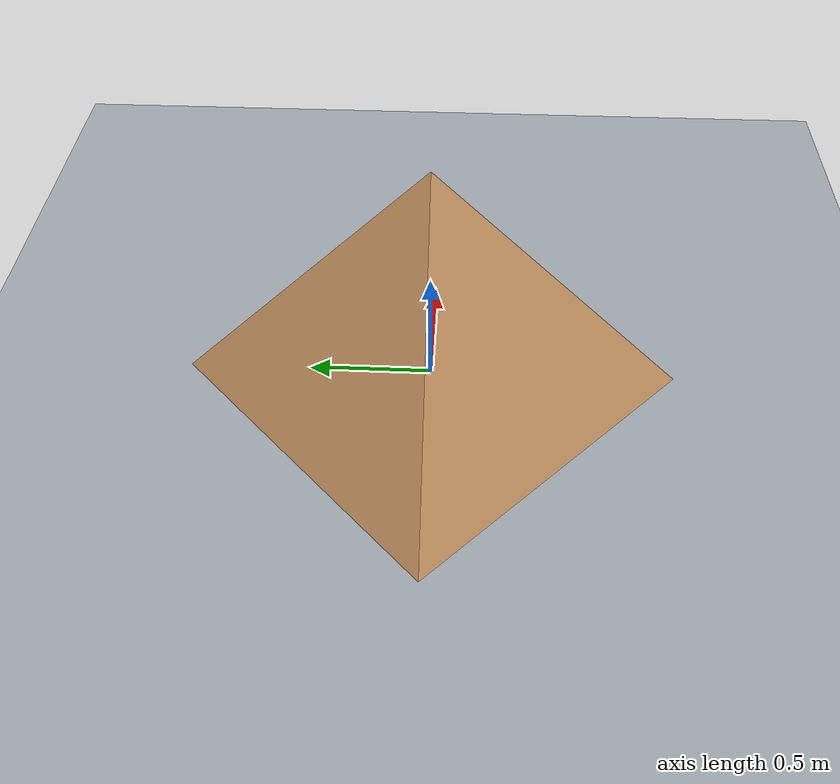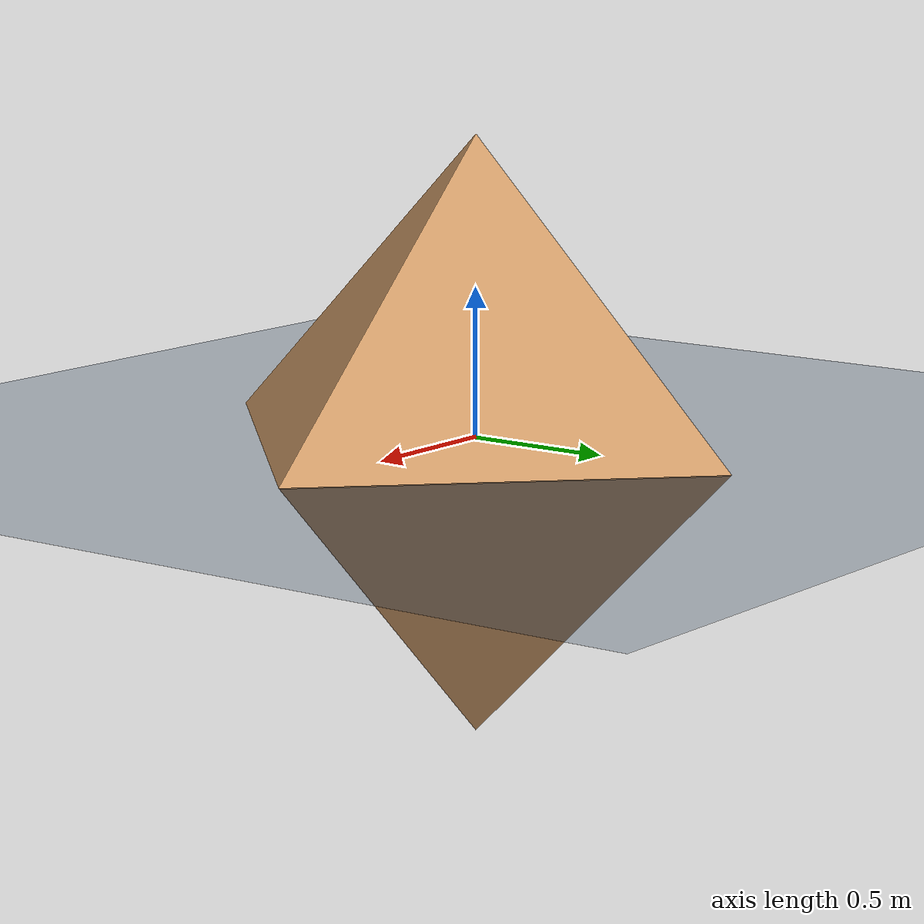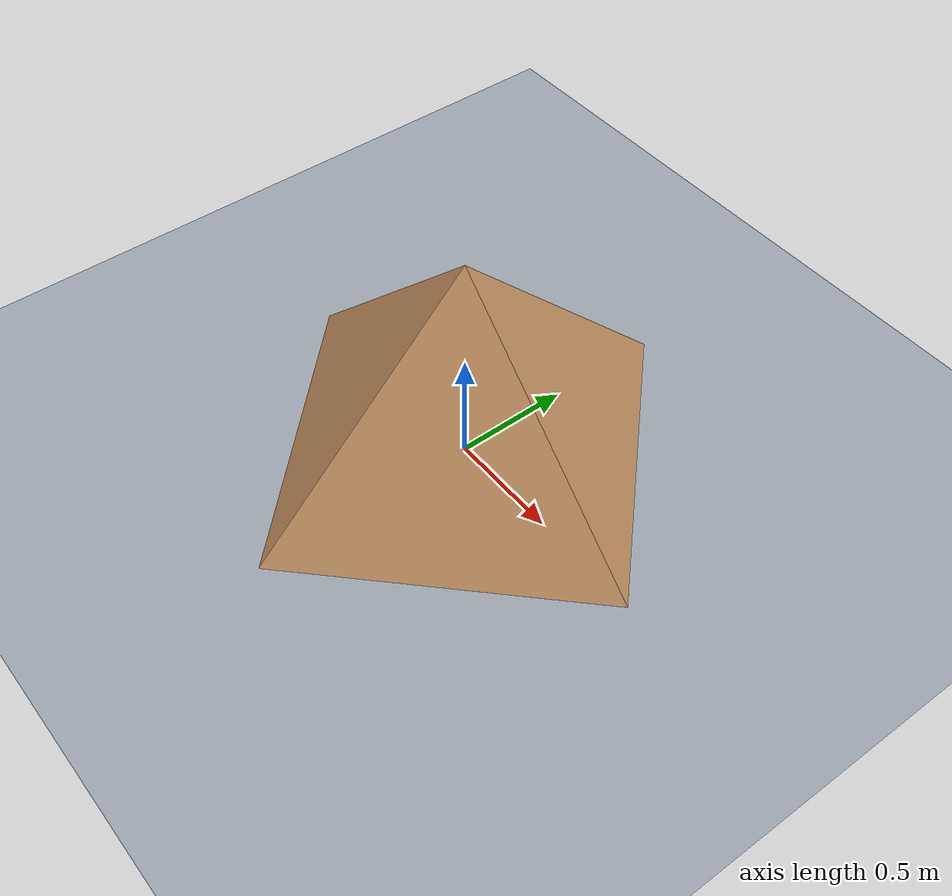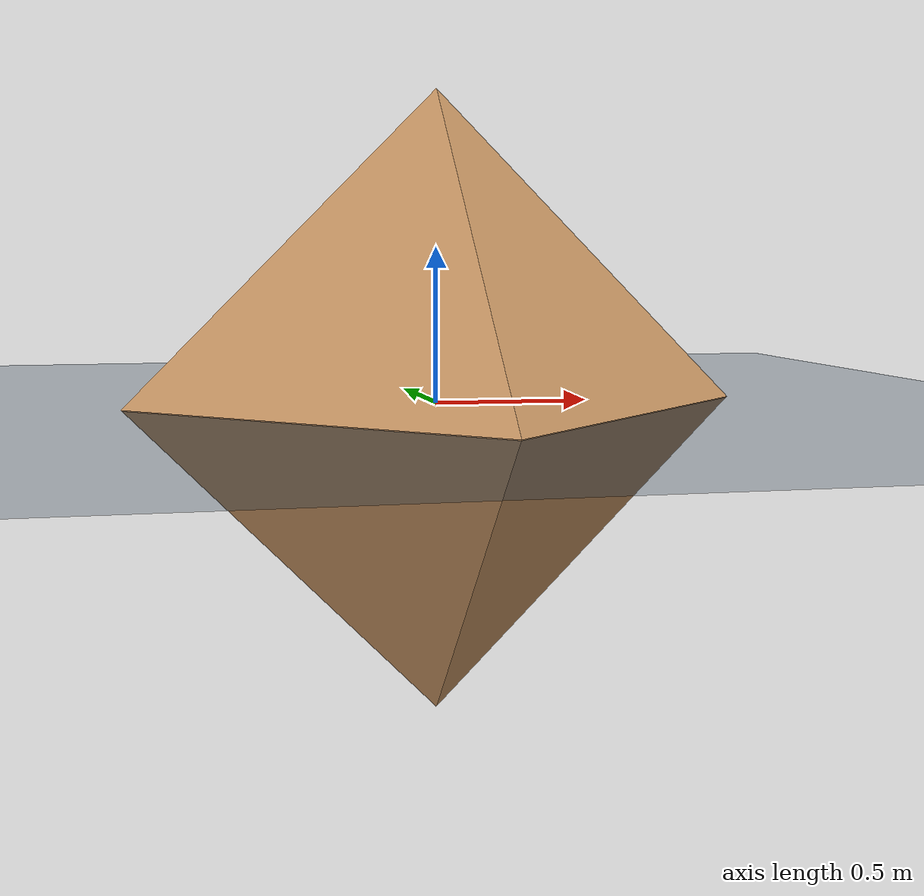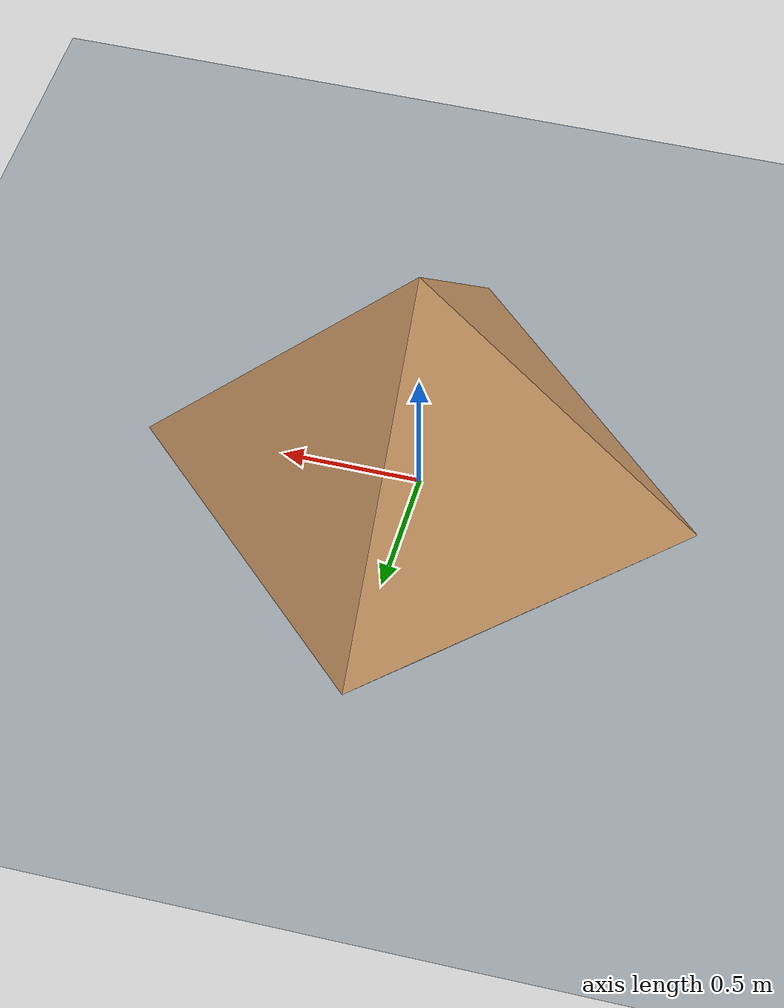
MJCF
<mujoco model="initial_humanoid">
  <!-- SET GRAVITY TO POINT DOWN -->
  <option gravity="0 0 -9.81">
    <!-- FLAG TO ADD NOISE TO SENSORS -->
    <flag sensornoise="disable"/>
  </option>

  <!-- VISUAL SETUP STUFF THAT I DON'T FULLY UNDERSTAND YET -->
  <visual>
    <map zfar="30"/>
    <rgba haze="0.15 0.25 0.35 1" />
  </visual>

  <!-- DON'T KNOW WHAT THIS DOES YET -->
  <statistic center="0 0 0.7"/>

  <!-- NOT SURE EXACTLY WHAT THIS STUFF DOES, BUT IT SETS UP THE CAMERA AND FLOOR -->
  <asset>
  <!-- this makes the sky blue in the simulation: -->
    <texture type="skybox" builtin="gradient" rgb1=".3 .5 .7" rgb2="0 0 0" width="32" height="512"/>

    <!-- configure the texture and material of the default body created in a simulation -->
    <texture name="body" type="cube" builtin="flat" mark="cross" width="128" height="128" rgb1="0.8 0.6 0.4" rgb2="0.8 0.6 0.4" markrgb="1 1 1" random="0.01"/>
    <!-- the material references the texture -->
    <material name="body" texture="body" texuniform="true" rgba="0.8 0.6 .4 1"/>

     <!-- configure the default texture and material for the ground of the simulation -->
    <texture name="grid" type="2d" builtin="checker" width="512" height="512" rgb1=".1 .2 .3" rgb2=".2 .3 .4"/>
    <!-- the material references the texture -->
    <material name="grid" texture="grid" texrepeat="1 1" texuniform="true" reflectance=".2"/>

    <mesh name="foot_mesh" vertex="-1 0 0  1 0 0  0 -1 0  0 1 0  0 0 1  0 0 -1"/>

  </asset>

  <!-- SECTION TO DEFINE GEOMETRIES AND JOINTS -->
  <default>

    <default class="general_geom">
      <motor ctrlrange="-0.5 0.5" ctrllimited="true"/>
      <!-- geoms -->
      <!-- ALL DEFAULT GEOMETRIES ARE CAPSULE TYPE -->
      <geom material="body" type="capsule" condim="1" friction="0.99 0.99 0.99" solimp=".9 .99 .003" group="1"/>

      <!-- SHIN GEOMETRY -->
      <default class="long_link">
        <geom fromto="0 0 0.1 0 0 0" size = "0.025"/>
      </default>

    </default>
  </default>

    <!-- DEFINE THE LEG, STARTING FROM THE WORLDBODY FRAME? -->
	<worldbody>
      <!-- DEFINE THE FLOOR IN THE ENVIRONMENT -->
      <geom name="ground" size="0 0 .05" friction='0.99 0.99 0.99' type="plane" material="grid" condim="3" solimp=".9 .99 .003" />

      <!-- LIGHT SETTING -->
      <light name="spotlight" mode="targetbodycom" target="foot" diffuse=".8 .8 .8" specular="0.3 0.3 0.3" pos="0 -6 4" cutoff="30"/>

        <!-- BODY FOR FOOT; CAN HAVE MAX 6-DOF -->
        <body name="foot" >
          <!-- Create prismatic joints to constrain motion along the x and z directions -->
          <joint type="hinge" name="rotation_dof" axis="0 1 0"/>
          <joint type="slide" name="joint_slide_x" axis="1 0 0"/>
          <joint type="slide" name="joint_slide_z" axis="0 0 1"/>

          <site name="front_foot_site" type="cylinder" size="0.075" rgba="0.5 0.5 0.5 0"/>
          <site name="back_foot_site" type="cylinder" size="0.075" rgba="0.5 0.5 0.5 0"/>

          <geom type="mesh" mesh="foot_mesh" name="foot_geom" friction=".99 .99 .99" rgba="0.8 0.6 0.4 1"/>

            <body name="long_link_body">

            <!-- Create a hinge joint to constrain rotation around the y-axis -->
              <joint type="hinge" name="ankle_hinge" axis="0 1 0" damping="2.5"/>
              <geom name="long_link_geom" class="long_link" solref="0.015 1" solimp=".99 .99 .001"/>
              <geom name="m_body" type="sphere" size="0.05"/>

            </body>

        </body>
      <!-- END OF DEFINING THE LEG IN 3D SPACE -->
	</worldbody>

  <contact>
    <pair name="foot_ground_friction" geom1="foot_geom" geom2="ground" solref="0.015 1" solimp="0.99 .99 .003" friction=".99 .99 .99"/>
    <pair name="longlink_ground_friction" geom1="long_link_geom" geom2="ground" solref="0.015 1" solimp="0.99 .99 .003" friction=".99 .99 .99"/>
  </contact>

    <!-- ACTUATORS FOR THE ANKLE JOINTS -->
	<actuator>
      <motor joint="ankle_hinge" name="ankle_actuator" gear="15" ctrlrange="-10 10"/>
	</actuator>

    <!-- SENSORS FOR THE ANKLE JOINTS -->
	<sensor>
      <jointpos joint='ankle_hinge'/>
      <touch site='front_foot_site'/>
      <touch site='back_foot_site'/>
	</sensor>

</mujoco>
